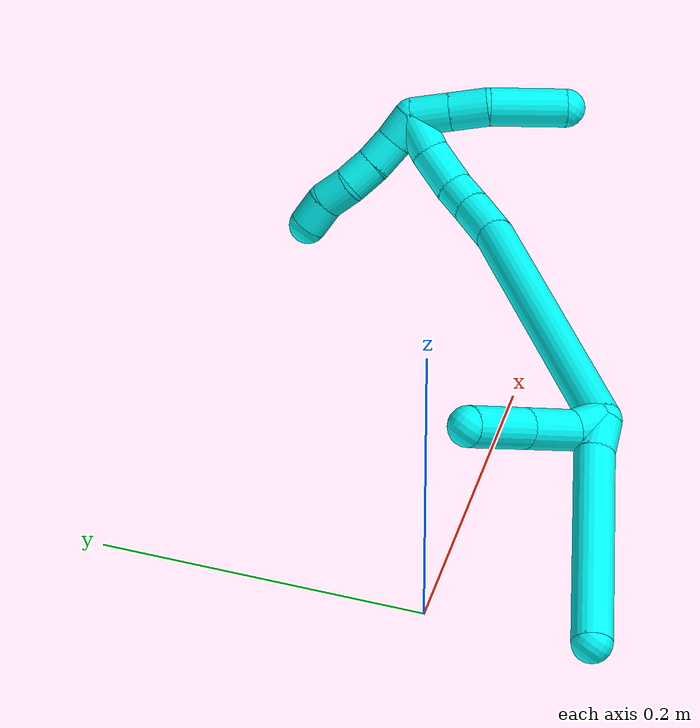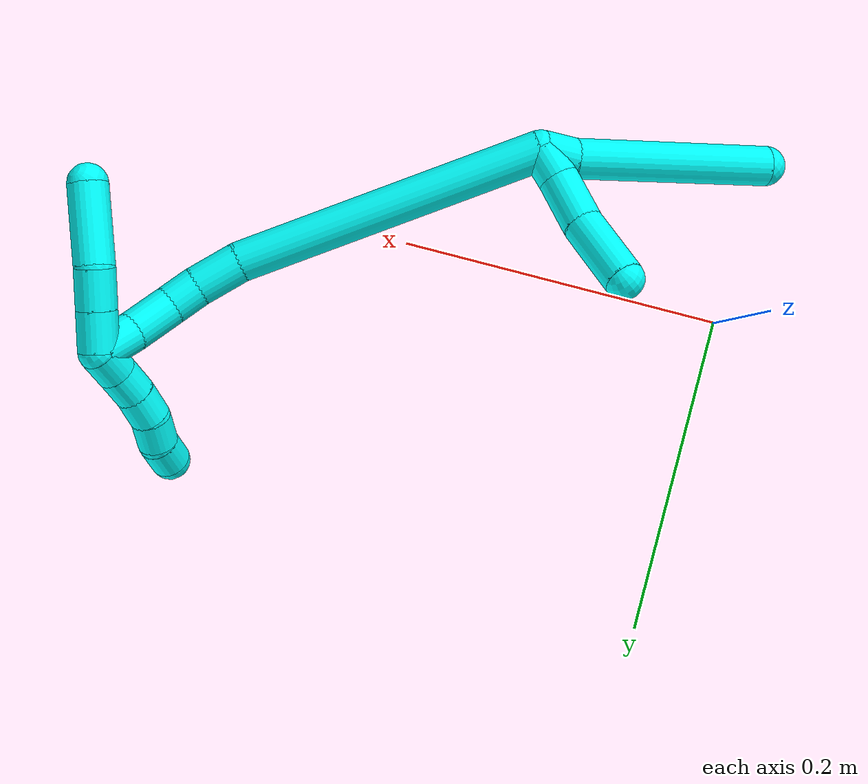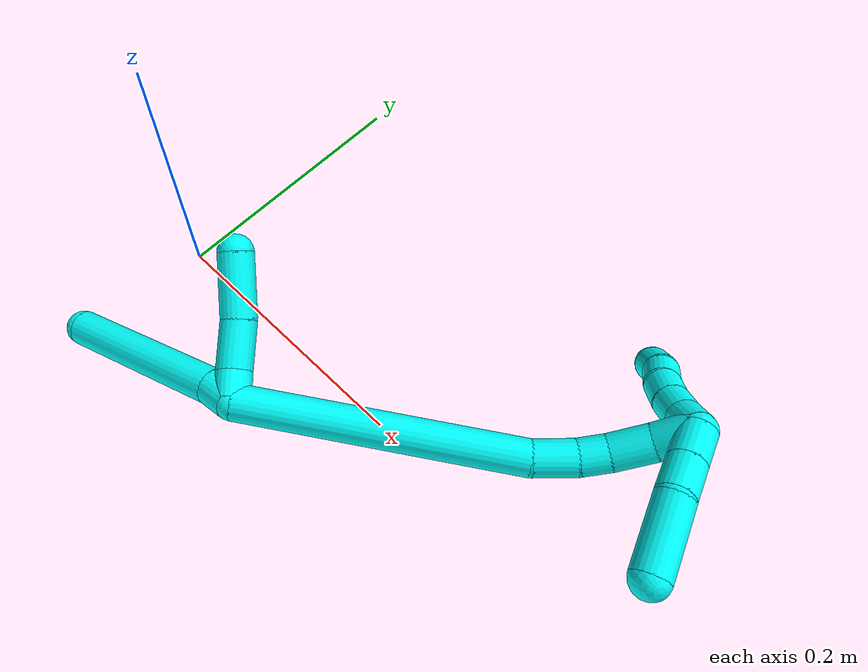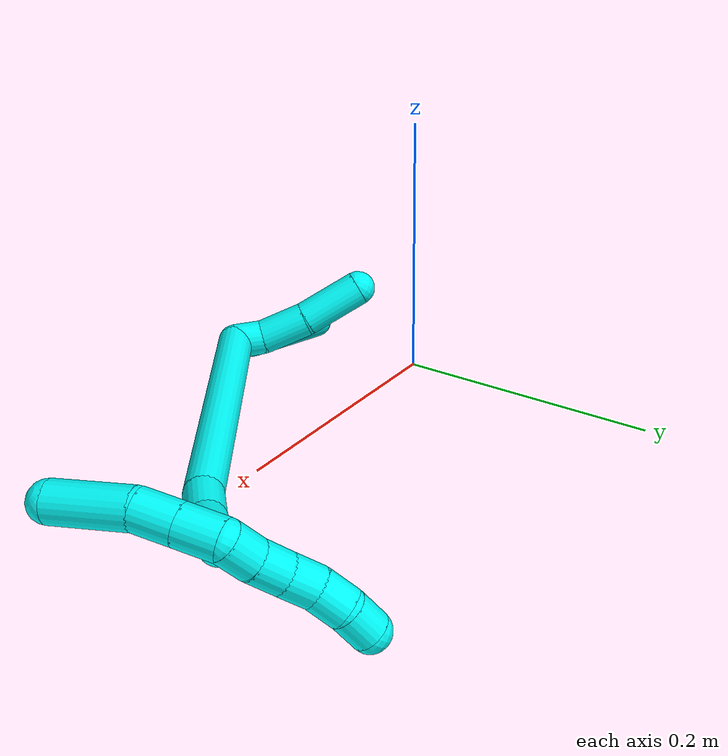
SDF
<sdf version="1.7">
 <world name="default">
  <model name="photoneo_s_sensor">
   <static>1</static>
   <pose>0 0 2 1.57079 1.57079 3.14159</pose>
   <link name="link">
    <inertial><mass>0.1</mass></inertial>
    <sensor name="sensor" type="depth">
     <update_rate>30</update_rate>
     <camera>
      <horizontal_fov>1.22</horizontal_fov>
      <image><width>1920</width><height>1200</height><format>B8G8R8</format></image>
      <clip><near>0.1</near><far>4</far></clip>
      <depth_camera><output>points</output></depth_camera>
     </camera>
     <plugin name="camera_plugin" filename="libgazebo_ros_depth_camera.so">
      <baseline>0.2</baseline>
      <alwaysOn>1</alwaysOn>
      <updateRate>0.0</updateRate>
      <cameraName>camera_ir</cameraName>
      <imageTopicName>/camera/color/image_raw</imageTopicName>
      <cameraInfoTopicName>/camera/color/camera_info</cameraInfoTopicName>
      <depthImageTopicName>/camera/depth/image_raw</depthImageTopicName>
      <depthImageCameraInfoTopicName>/camera/depth/camera_info</depthImageCameraInfoTopicName>
      <pointCloudTopicName>/camera/depth/points</pointCloudTopicName>
      <frameName>fr_optical</frameName>
      <pointCloudCutoff>0.1</pointCloudCutoff>
      <pointCloudCutoffMax>2.0</pointCloudCutoffMax>
      <distortionK1>0</distortionK1>
      <distortionK2>0</distortionK2>
      <distortionK3>0</distortionK3>
      <distortionT1>0</distortionT1>
      <distortionT2>0</distortionT2>
      <CxPrime>0</CxPrime>
      <Cx>0</Cx>
      <Cy>0</Cy>
      <focalLength>0</focalLength>
      <hackBaseline>0</hackBaseline>
     </plugin>
    </sensor>
   </link>
  </model>
  <model name="bin">
   <static>1</static>
   <link name="bottom">
    <collision name="collision-bottom">
     <pose>0 0 -0.01 0 -0 0</pose>
     <geometry><box><size>0.8 0.6 0.02</size></box></geometry>
     <surface>
      <friction><ode><mu>100</mu><mu2>100</mu2></ode></friction>
      <contact><collide_bitmask>65535</collide_bitmask></contact>
     </surface>
    </collision>
   </link>
   <link name="west_wall">
    <collision name="collision-west_wall">
     <pose>-0.41 0 0.1 0 -0 0</pose>
     <geometry><box><size>0.02 0.6 0.2</size></box></geometry>
     <surface>
      <friction><ode><mu>100</mu><mu2>100</mu2></ode></friction>
      <contact><collide_bitmask>65535</collide_bitmask></contact>
     </surface>
    </collision>
   </link>
   <link name="east_wall">
    <collision name="collision-east_wall">
     <pose>0.41 0 0.1 0 -0 0</pose>
     <geometry><box><size>0.02 0.6 0.2</size></box></geometry>
     <surface>
      <friction><ode><mu>100</mu><mu2>100</mu2></ode></friction>
      <contact><collide_bitmask>65535</collide_bitmask></contact>
     </surface>
    </collision>
   </link>
   <link name="south_wall">
    <collision name="collision-south_wall">
     <pose>0 -0.31 0.1 0 -0 0</pose>
     <geometry><box><size>0.8 0.02 0.2</size></box></geometry>
     <surface>
      <friction><ode><mu>100</mu><mu2>100</mu2></ode></friction>
      <contact><collide_bitmask>65535</collide_bitmask></contact>
     </surface>
    </collision>
   </link>
   <link name="north_wall">
    <collision name="collision-north_wall">
     <pose>0 0.31 0.1 0 -0 0</pose>
     <geometry><box><size>0.8 0.02 0.2</size></box></geometry>
     <surface>
      <friction><ode><mu>100</mu><mu2>100</mu2></ode></friction>
      <contact><collide_bitmask>65535</collide_bitmask></contact>
     </surface>
    </collision>
   </link>
  </model>
  <model name="3">
   <static>0</static>
   <link name="3">
    <collision name="collision-cylinder-e_1_2_8">
     <pose>-0.006387 -0.002164 -0.008868 2.90227 -0.610558 -2.41259</pose>
     <geometry><cylinder><radius>0.0125</radius><length>0.022281</length></cylinder></geometry>
     <surface>
      <friction><ode><mu>1.16</mu><mu2>1.16</mu2><slip1>0</slip1><slip2>0</slip2></ode></friction>
      <contact><ode><kp>1e+06</kp><kd>1</kd><max_vel>0</max_vel><min_depth>0.001</min_depth></ode></contact>
     </surface>
    </collision>
    <visual name="visual-cylinder-e_1_2_8">
     <pose>-0.006387 -0.002164 -0.008868 2.90227 -0.610558 -2.41259</pose>
     <geometry><cylinder><radius>0.0125</radius><length>0.022281</length></cylinder></geometry>
     <material><ambient>0.003922 1 0.996078 1</ambient></material>
    </visual>
    <collision name="collision-cylinder-e_2_8_6">
     <pose>-0.054827 -0.024668 -0.061277 2.70458 -0.718841 -2.07408</pose>
     <geometry><cylinder><radius>0.0125</radius><length>0.127719</length></cylinder></geometry>
     <surface>
      <friction><ode><mu>1.16</mu><mu2>1.16</mu2><slip1>0</slip1><slip2>0</slip2></ode></friction>
      <contact><ode><kp>1e+06</kp><kd>1</kd><max_vel>0</max_vel><min_depth>0.001</min_depth></ode></contact>
     </surface>
    </collision>
    <visual name="visual-cylinder-e_2_8_6">
     <pose>-0.054827 -0.024668 -0.061277 2.70458 -0.718841 -2.07408</pose>
     <geometry><cylinder><radius>0.0125</radius><length>0.127719</length></cylinder></geometry>
     <material><ambient>0.003922 1 0.996078 1</ambient></material>
    </visual>
    <collision name="collision-cylinder-e_1_2_9">
     <pose>-0.00317 0.006603 -0.007247 -2.40264 -0.312735 0.773226</pose>
     <geometry><cylinder><radius>0.0125</radius><length>0.020607</length></cylinder></geometry>
     <surface>
      <friction><ode><mu>1.16</mu><mu2>1.16</mu2><slip1>0</slip1><slip2>0</slip2></ode></friction>
      <contact><ode><kp>1e+06</kp><kd>1</kd><max_vel>0</max_vel><min_depth>0.001</min_depth></ode></contact>
     </surface>
    </collision>
    <visual name="visual-cylinder-e_1_2_9">
     <pose>-0.00317 0.006603 -0.007247 -2.40264 -0.312735 0.773226</pose>
     <geometry><cylinder><radius>0.0125</radius><length>0.020607</length></cylinder></geometry>
     <material><ambient>0.003922 1 0.996078 1</ambient></material>
    </visual>
    <collision name="collision-cylinder-e_2_9_10">
     <pose>-0.012797 0.027343 -0.021963 -2.05687 -0.383819 0.62378</pose>
     <geometry><cylinder><radius>0.0125</radius><length>0.034488</length></cylinder></geometry>
     <surface>
      <friction><ode><mu>1.16</mu><mu2>1.16</mu2><slip1>0</slip1><slip2>0</slip2></ode></friction>
      <contact><ode><kp>1e+06</kp><kd>1</kd><max_vel>0</max_vel><min_depth>0.001</min_depth></ode></contact>
     </surface>
    </collision>
    <visual name="visual-cylinder-e_2_9_10">
     <pose>-0.012797 0.027343 -0.021963 -2.05687 -0.383819 0.62378</pose>
     <geometry><cylinder><radius>0.0125</radius><length>0.034488</length></cylinder></geometry>
     <material><ambient>0.003922 1 0.996078 1</ambient></material>
    </visual>
    <collision name="collision-cylinder-e_3_10_5">
     <pose>-0.03068 0.058866 -0.037877 -2.02296 -0.533879 0.823725</pose>
     <geometry><cylinder><radius>0.0125</radius><length>0.044905</length></cylinder></geometry>
     <surface>
      <friction><ode><mu>1.16</mu><mu2>1.16</mu2><slip1>0</slip1><slip2>0</slip2></ode></friction>
      <contact><ode><kp>1e+06</kp><kd>1</kd><max_vel>0</max_vel><min_depth>0.001</min_depth></ode></contact>
     </surface>
    </collision>
    <visual name="visual-cylinder-e_3_10_5">
     <pose>-0.03068 0.058866 -0.037877 -2.02296 -0.533879 0.823725</pose>
     <geometry><cylinder><radius>0.0125</radius><length>0.044905</length></cylinder></geometry>
     <material><ambient>0.003922 1 0.996078 1</ambient></material>
    </visual>
    <collision name="collision-cylinder-e_1_2_11">
     <pose>0.085202 0.039375 0.025551 -0.99519 1.06726 -0.621066</pose>
     <geometry><cylinder><radius>0.0125</radius><length>0.194552</length></cylinder></geometry>
     <surface>
      <friction><ode><mu>1.16</mu><mu2>1.16</mu2><slip1>0</slip1><slip2>0</slip2></ode></friction>
      <contact><ode><kp>1e+06</kp><kd>1</kd><max_vel>0</max_vel><min_depth>0.001</min_depth></ode></contact>
     </surface>
    </collision>
    <visual name="visual-cylinder-e_1_2_11">
     <pose>0.085202 0.039375 0.025551 -0.99519 1.06726 -0.621066</pose>
     <geometry><cylinder><radius>0.0125</radius><length>0.194552</length></cylinder></geometry>
     <material><ambient>0.003922 1 0.996078 1</ambient></material>
    </visual>
    <collision name="collision-cylinder-e_2_11_12">
     <pose>0.182357 0.087248 0.053931 -1.24935 0.92764 -0.692262</pose>
     <geometry><cylinder><radius>0.0125</radius><length>0.029872</length></cylinder></geometry>
     <surface>
      <friction><ode><mu>1.16</mu><mu2>1.16</mu2><slip1>0</slip1><slip2>0</slip2></ode></friction>
      <contact><ode><kp>1e+06</kp><kd>1</kd><max_vel>0</max_vel><min_depth>0.001</min_depth></ode></contact>
     </surface>
    </collision>
    <visual name="visual-cylinder-e_2_11_12">
     <pose>0.182357 0.087248 0.053931 -1.24935 0.92764 -0.692262</pose>
     <geometry><cylinder><radius>0.0125</radius><length>0.029872</length></cylinder></geometry>
     <material><ambient>0.003922 1 0.996078 1</ambient></material>
    </visual>
    <collision name="collision-cylinder-e_3_12_13">
     <pose>0.201233 0.102736 0.058712 -1.29857 0.762001 -0.590368</pose>
     <geometry><cylinder><radius>0.0125</radius><length>0.020061</length></cylinder></geometry>
     <surface>
      <friction><ode><mu>1.16</mu><mu2>1.16</mu2><slip1>0</slip1><slip2>0</slip2></ode></friction>
      <contact><ode><kp>1e+06</kp><kd>1</kd><max_vel>0</max_vel><min_depth>0.001</min_depth></ode></contact>
     </surface>
    </collision>
    <visual name="visual-cylinder-e_3_12_13">
     <pose>0.201233 0.102736 0.058712 -1.29857 0.762001 -0.590368</pose>
     <geometry><cylinder><radius>0.0125</radius><length>0.020061</length></cylinder></geometry>
     <material><ambient>0.003922 1 0.996078 1</ambient></material>
    </visual>
    <collision name="collision-cylinder-e_4_13_14">
     <pose>0.215874 0.121362 0.065193 -1.19956 0.553501 -0.383684</pose>
     <geometry><cylinder><radius>0.0125</radius><length>0.029358</length></cylinder></geometry>
     <surface>
      <friction><ode><mu>1.16</mu><mu2>1.16</mu2><slip1>0</slip1><slip2>0</slip2></ode></friction>
      <contact><ode><kp>1e+06</kp><kd>1</kd><max_vel>0</max_vel><min_depth>0.001</min_depth></ode></contact>
     </surface>
    </collision>
    <visual name="visual-cylinder-e_4_13_14">
     <pose>0.215874 0.121362 0.065193 -1.19956 0.553501 -0.383684</pose>
     <geometry><cylinder><radius>0.0125</radius><length>0.029358</length></cylinder></geometry>
     <material><ambient>0.003922 1 0.996078 1</ambient></material>
    </visual>
    <collision name="collision-cylinder-e_5_14_1">
     <pose>0.227899 0.143731 0.075831 -1.05341 0.335709 -0.196435</pose>
     <geometry><cylinder><radius>0.0125</radius><length>0.026157</length></cylinder></geometry>
     <surface>
      <friction><ode><mu>1.16</mu><mu2>1.16</mu2><slip1>0</slip1><slip2>0</slip2></ode></friction>
      <contact><ode><kp>1e+06</kp><kd>1</kd><max_vel>0</max_vel><min_depth>0.001</min_depth></ode></contact>
     </surface>
    </collision>
    <visual name="visual-cylinder-e_5_14_1">
     <pose>0.227899 0.143731 0.075831 -1.05341 0.335709 -0.196435</pose>
     <geometry><cylinder><radius>0.0125</radius><length>0.026157</length></cylinder></geometry>
     <material><ambient>0.003922 1 0.996078 1</ambient></material>
    </visual>
    <collision name="collision-cylinder-e_1_1_15">
     <pose>0.22889 0.145807 0.090447 0.793958 -0.266855 -0.112425</pose>
     <geometry><cylinder><radius>0.0125</radius><length>0.025166</length></cylinder></geometry>
     <surface>
      <friction><ode><mu>1.16</mu><mu2>1.16</mu2><slip1>0</slip1><slip2>0</slip2></ode></friction>
      <contact><ode><kp>1e+06</kp><kd>1</kd><max_vel>0</max_vel><min_depth>0.001</min_depth></ode></contact>
     </surface>
    </collision>
    <visual name="visual-cylinder-e_1_1_15">
     <pose>0.22889 0.145807 0.090447 0.793958 -0.266855 -0.112425</pose>
     <geometry><cylinder><radius>0.0125</radius><length>0.025166</length></cylinder></geometry>
     <material><ambient>0.003922 1 0.996078 1</ambient></material>
    </visual>
    <collision name="collision-cylinder-e_2_15_16">
     <pose>0.222281 0.128548 0.107439 0.792452 -0.265877 -0.111773</pose>
     <geometry><cylinder><radius>0.0125</radius><length>0.025045</length></cylinder></geometry>
     <surface>
      <friction><ode><mu>1.16</mu><mu2>1.16</mu2><slip1>0</slip1><slip2>0</slip2></ode></friction>
      <contact><ode><kp>1e+06</kp><kd>1</kd><max_vel>0</max_vel><min_depth>0.001</min_depth></ode></contact>
     </surface>
    </collision>
    <visual name="visual-cylinder-e_2_15_16">
     <pose>0.222281 0.128548 0.107439 0.792452 -0.265877 -0.111773</pose>
     <geometry><cylinder><radius>0.0125</radius><length>0.025045</length></cylinder></geometry>
     <material><ambient>0.003922 1 0.996078 1</ambient></material>
    </visual>
    <collision name="collision-cylinder-e_3_16_4">
     <pose>0.217008 0.099524 0.130023 0.966449 -0.079712 -0.041842</pose>
     <geometry><cylinder><radius>0.0125</radius><length>0.049789</length></cylinder></geometry>
     <surface>
      <friction><ode><mu>1.16</mu><mu2>1.16</mu2><slip1>0</slip1><slip2>0</slip2></ode></friction>
      <contact><ode><kp>1e+06</kp><kd>1</kd><max_vel>0</max_vel><min_depth>0.001</min_depth></ode></contact>
     </surface>
    </collision>
    <visual name="visual-cylinder-e_3_16_4">
     <pose>0.217008 0.099524 0.130023 0.966449 -0.079712 -0.041842</pose>
     <geometry><cylinder><radius>0.0125</radius><length>0.049789</length></cylinder></geometry>
     <material><ambient>0.003922 1 0.996078 1</ambient></material>
    </visual>
    <collision name="collision-cylinder-e_1_1_17">
     <pose>0.233579 0.154434 0.072033 3.13867 0.137556 3.09914</pose>
     <geometry><cylinder><radius>0.0125</radius><length>0.02</length></cylinder></geometry>
     <surface>
      <friction><ode><mu>1.16</mu><mu2>1.16</mu2><slip1>0</slip1><slip2>0</slip2></ode></friction>
      <contact><ode><kp>1e+06</kp><kd>1</kd><max_vel>0</max_vel><min_depth>0.001</min_depth></ode></contact>
     </surface>
    </collision>
    <visual name="visual-cylinder-e_1_1_17">
     <pose>0.233579 0.154434 0.072033 3.13867 0.137556 3.09914</pose>
     <geometry><cylinder><radius>0.0125</radius><length>0.02</length></cylinder></geometry>
     <material><ambient>0.003922 1 0.996078 1</ambient></material>
    </visual>
    <collision name="collision-cylinder-e_2_17_18">
     <pose>0.23541 0.155437 0.052191 -3.03814 0.045989 -0.836039</pose>
     <geometry><cylinder><radius>0.0125</radius><length>0.02</length></cylinder></geometry>
     <surface>
      <friction><ode><mu>1.16</mu><mu2>1.16</mu2><slip1>0</slip1><slip2>0</slip2></ode></friction>
      <contact><ode><kp>1e+06</kp><kd>1</kd><max_vel>0</max_vel><min_depth>0.001</min_depth></ode></contact>
     </surface>
    </collision>
    <visual name="visual-cylinder-e_2_17_18">
     <pose>0.23541 0.155437 0.052191 -3.03814 0.045989 -0.836039</pose>
     <geometry><cylinder><radius>0.0125</radius><length>0.02</length></cylinder></geometry>
     <material><ambient>0.003922 1 0.996078 1</ambient></material>
    </visual>
    <collision name="collision-cylinder-e_3_18_19">
     <pose>0.236774 0.158648 0.032538 -2.92097 0.090559 -0.776624</pose>
     <geometry><cylinder><radius>0.0125</radius><length>0.02</length></cylinder></geometry>
     <surface>
      <friction><ode><mu>1.16</mu><mu2>1.16</mu2><slip1>0</slip1><slip2>0</slip2></ode></friction>
      <contact><ode><kp>1e+06</kp><kd>1</kd><max_vel>0</max_vel><min_depth>0.001</min_depth></ode></contact>
     </surface>
    </collision>
    <visual name="visual-cylinder-e_3_18_19">
     <pose>0.236774 0.158648 0.032538 -2.92097 0.090559 -0.776624</pose>
     <geometry><cylinder><radius>0.0125</radius><length>0.02</length></cylinder></geometry>
     <material><ambient>0.003922 1 0.996078 1</ambient></material>
    </visual>
    <collision name="collision-cylinder-e_4_19_20">
     <pose>0.241007 0.163491 0.013775 -2.85524 0.339394 -1.74269</pose>
     <geometry><cylinder><radius>0.0125</radius><length>0.02</length></cylinder></geometry>
     <surface>
      <friction><ode><mu>1.16</mu><mu2>1.16</mu2><slip1>0</slip1><slip2>0</slip2></ode></friction>
      <contact><ode><kp>1e+06</kp><kd>1</kd><max_vel>0</max_vel><min_depth>0.001</min_depth></ode></contact>
     </surface>
    </collision>
    <visual name="visual-cylinder-e_4_19_20">
     <pose>0.241007 0.163491 0.013775 -2.85524 0.339394 -1.74269</pose>
     <geometry><cylinder><radius>0.0125</radius><length>0.02</length></cylinder></geometry>
     <material><ambient>0.003922 1 0.996078 1</ambient></material>
    </visual>
    <collision name="collision-cylinder-e_5_20_3">
     <pose>0.247105 0.165823 -0.004875 3.10711 0.280484 2.8985</pose>
     <geometry><cylinder><radius>0.0125</radius><length>0.02</length></cylinder></geometry>
     <surface>
      <friction><ode><mu>1.16</mu><mu2>1.16</mu2><slip1>0</slip1><slip2>0</slip2></ode></friction>
      <contact><ode><kp>1e+06</kp><kd>1</kd><max_vel>0</max_vel><min_depth>0.001</min_depth></ode></contact>
     </surface>
    </collision>
    <visual name="visual-cylinder-e_5_20_3">
     <pose>0.247105 0.165823 -0.004875 3.10711 0.280484 2.8985</pose>
     <geometry><cylinder><radius>0.0125</radius><length>0.02</length></cylinder></geometry>
     <material><ambient>0.003922 1 0.996078 1</ambient></material>
    </visual>
    <collision name="collision-sphere-3">
     <pose>0.249873 0.165492 -0.014478 0 -0 0</pose>
     <geometry><sphere><radius>0.0125</radius></sphere></geometry>
     <surface>
      <friction><ode><mu>1.16</mu><mu2>1.16</mu2><slip1>0</slip1><slip2>0</slip2></ode></friction>
      <contact><ode><kp>1e+06</kp><kd>1</kd><max_vel>0</max_vel><min_depth>0.001</min_depth></ode></contact>
     </surface>
    </collision>
    <visual name="visual-sphere-3">
     <pose>0.249873 0.165492 -0.014478 0 -0 0</pose>
     <geometry><sphere><radius>0.0125</radius></sphere></geometry>
     <material><ambient>0.003922 1 0.996078 1</ambient></material>
    </visual>
    <collision name="collision-sphere-20">
     <pose>0.244337 0.166154 0.004729 0 -0 0</pose>
     <geometry><sphere><radius>0.0125</radius></sphere></geometry>
     <surface>
      <friction><ode><mu>1.16</mu><mu2>1.16</mu2><slip1>0</slip1><slip2>0</slip2></ode></friction>
      <contact><ode><kp>1e+06</kp><kd>1</kd><max_vel>0</max_vel><min_depth>0.001</min_depth></ode></contact>
     </surface>
    </collision>
    <visual name="visual-sphere-20">
     <pose>0.244337 0.166154 0.004729 0 -0 0</pose>
     <geometry><sphere><radius>0.0125</radius></sphere></geometry>
     <material><ambient>0.003922 1 0.996078 1</ambient></material>
    </visual>
    <collision name="collision-sphere-19">
     <pose>0.237678 0.160827 0.02282 0 -0 0</pose>
     <geometry><sphere><radius>0.0125</radius></sphere></geometry>
     <surface>
      <friction><ode><mu>1.16</mu><mu2>1.16</mu2><slip1>0</slip1><slip2>0</slip2></ode></friction>
      <contact><ode><kp>1e+06</kp><kd>1</kd><max_vel>0</max_vel><min_depth>0.001</min_depth></ode></contact>
     </surface>
    </collision>
    <visual name="visual-sphere-19">
     <pose>0.237678 0.160827 0.02282 0 -0 0</pose>
     <geometry><sphere><radius>0.0125</radius></sphere></geometry>
     <material><ambient>0.003922 1 0.996078 1</ambient></material>
    </visual>
    <collision name="collision-sphere-5">
     <pose>-0.042106 0.076252 -0.046322 0 -0 0</pose>
     <geometry><sphere><radius>0.0125</radius></sphere></geometry>
     <surface>
      <friction><ode><mu>1.16</mu><mu2>1.16</mu2><slip1>0</slip1><slip2>0</slip2></ode></friction>
      <contact><ode><kp>1e+06</kp><kd>1</kd><max_vel>0</max_vel><min_depth>0.001</min_depth></ode></contact>
     </surface>
    </collision>
    <visual name="visual-sphere-5">
     <pose>-0.042106 0.076252 -0.046322 0 -0 0</pose>
     <geometry><sphere><radius>0.0125</radius></sphere></geometry>
     <material><ambient>0.003922 1 0.996078 1</ambient></material>
    </visual>
    <collision name="collision-sphere-10">
     <pose>-0.019254 0.041481 -0.029432 0 -0 0</pose>
     <geometry><sphere><radius>0.0125</radius></sphere></geometry>
     <surface>
      <friction><ode><mu>1.16</mu><mu2>1.16</mu2><slip1>0</slip1><slip2>0</slip2></ode></friction>
      <contact><ode><kp>1e+06</kp><kd>1</kd><max_vel>0</max_vel><min_depth>0.001</min_depth></ode></contact>
     </surface>
    </collision>
    <visual name="visual-sphere-10">
     <pose>-0.019254 0.041481 -0.029432 0 -0 0</pose>
     <geometry><sphere><radius>0.0125</radius></sphere></geometry>
     <material><ambient>0.003922 1 0.996078 1</ambient></material>
    </visual>
    <collision name="collision-sphere-6">
     <pose>-0.096879 -0.045008 -0.104819 0 -0 0</pose>
     <geometry><sphere><radius>0.0125</radius></sphere></geometry>
     <surface>
      <friction><ode><mu>1.16</mu><mu2>1.16</mu2><slip1>0</slip1><slip2>0</slip2></ode></friction>
      <contact><ode><kp>1e+06</kp><kd>1</kd><max_vel>0</max_vel><min_depth>0.001</min_depth></ode></contact>
     </surface>
    </collision>
    <visual name="visual-sphere-6">
     <pose>-0.096879 -0.045008 -0.104819 0 -0 0</pose>
     <geometry><sphere><radius>0.0125</radius></sphere></geometry>
     <material><ambient>0.003922 1 0.996078 1</ambient></material>
    </visual>
    <collision name="collision-sphere-9">
     <pose>-0.00634 0.013206 -0.014493 0 -0 0</pose>
     <geometry><sphere><radius>0.0125</radius></sphere></geometry>
     <surface>
      <friction><ode><mu>1.16</mu><mu2>1.16</mu2><slip1>0</slip1><slip2>0</slip2></ode></friction>
      <contact><ode><kp>1e+06</kp><kd>1</kd><max_vel>0</max_vel><min_depth>0.001</min_depth></ode></contact>
     </surface>
    </collision>
    <visual name="visual-sphere-9">
     <pose>-0.00634 0.013206 -0.014493 0 -0 0</pose>
     <geometry><sphere><radius>0.0125</radius></sphere></geometry>
     <material><ambient>0.003922 1 0.996078 1</ambient></material>
    </visual>
    <collision name="collision-sphere-2">
     <geometry><sphere><radius>0.0125</radius></sphere></geometry>
     <surface>
      <friction><ode><mu>1.16</mu><mu2>1.16</mu2><slip1>0</slip1><slip2>0</slip2></ode></friction>
      <contact><ode><kp>1e+06</kp><kd>1</kd><max_vel>0</max_vel><min_depth>0.001</min_depth></ode></contact>
     </surface>
    </collision>
    <visual name="visual-sphere-2">
     <geometry><sphere><radius>0.0125</radius></sphere></geometry>
     <material><ambient>0.003922 1 0.996078 1</ambient></material>
    </visual>
    <collision name="collision-sphere-8">
     <pose>-0.012774 -0.004327 -0.017735 0 -0 0</pose>
     <geometry><sphere><radius>0.0125</radius></sphere></geometry>
     <surface>
      <friction><ode><mu>1.16</mu><mu2>1.16</mu2><slip1>0</slip1><slip2>0</slip2></ode></friction>
      <contact><ode><kp>1e+06</kp><kd>1</kd><max_vel>0</max_vel><min_depth>0.001</min_depth></ode></contact>
     </surface>
    </collision>
    <visual name="visual-sphere-8">
     <pose>-0.012774 -0.004327 -0.017735 0 -0 0</pose>
     <geometry><sphere><radius>0.0125</radius></sphere></geometry>
     <material><ambient>0.003922 1 0.996078 1</ambient></material>
    </visual>
    <collision name="collision-sphere-11">
     <pose>0.170405 0.078749 0.051101 0 -0 0</pose>
     <geometry><sphere><radius>0.0125</radius></sphere></geometry>
     <surface>
      <friction><ode><mu>1.16</mu><mu2>1.16</mu2><slip1>0</slip1><slip2>0</slip2></ode></friction>
      <contact><ode><kp>1e+06</kp><kd>1</kd><max_vel>0</max_vel><min_depth>0.001</min_depth></ode></contact>
     </surface>
    </collision>
    <visual name="visual-sphere-11">
     <pose>0.170405 0.078749 0.051101 0 -0 0</pose>
     <geometry><sphere><radius>0.0125</radius></sphere></geometry>
     <material><ambient>0.003922 1 0.996078 1</ambient></material>
    </visual>
    <collision name="collision-sphere-12">
     <pose>0.194309 0.095747 0.056761 0 -0 0</pose>
     <geometry><sphere><radius>0.0125</radius></sphere></geometry>
     <surface>
      <friction><ode><mu>1.16</mu><mu2>1.16</mu2><slip1>0</slip1><slip2>0</slip2></ode></friction>
      <contact><ode><kp>1e+06</kp><kd>1</kd><max_vel>0</max_vel><min_depth>0.001</min_depth></ode></contact>
     </surface>
    </collision>
    <visual name="visual-sphere-12">
     <pose>0.194309 0.095747 0.056761 0 -0 0</pose>
     <geometry><sphere><radius>0.0125</radius></sphere></geometry>
     <material><ambient>0.003922 1 0.996078 1</ambient></material>
    </visual>
    <collision name="collision-sphere-13">
     <pose>0.208158 0.109726 0.060663 0 -0 0</pose>
     <geometry><sphere><radius>0.0125</radius></sphere></geometry>
     <surface>
      <friction><ode><mu>1.16</mu><mu2>1.16</mu2><slip1>0</slip1><slip2>0</slip2></ode></friction>
      <contact><ode><kp>1e+06</kp><kd>1</kd><max_vel>0</max_vel><min_depth>0.001</min_depth></ode></contact>
     </surface>
    </collision>
    <visual name="visual-sphere-13">
     <pose>0.208158 0.109726 0.060663 0 -0 0</pose>
     <geometry><sphere><radius>0.0125</radius></sphere></geometry>
     <material><ambient>0.003922 1 0.996078 1</ambient></material>
    </visual>
    <collision name="collision-sphere-14">
     <pose>0.223591 0.132999 0.069723 0 -0 0</pose>
     <geometry><sphere><radius>0.0125</radius></sphere></geometry>
     <surface>
      <friction><ode><mu>1.16</mu><mu2>1.16</mu2><slip1>0</slip1><slip2>0</slip2></ode></friction>
      <contact><ode><kp>1e+06</kp><kd>1</kd><max_vel>0</max_vel><min_depth>0.001</min_depth></ode></contact>
     </surface>
    </collision>
    <visual name="visual-sphere-14">
     <pose>0.223591 0.132999 0.069723 0 -0 0</pose>
     <geometry><sphere><radius>0.0125</radius></sphere></geometry>
     <material><ambient>0.003922 1 0.996078 1</ambient></material>
    </visual>
    <collision name="collision-sphere-1">
     <pose>0.232208 0.154463 0.081938 0 -0 0</pose>
     <geometry><sphere><radius>0.0125</radius></sphere></geometry>
     <surface>
      <friction><ode><mu>1.16</mu><mu2>1.16</mu2><slip1>0</slip1><slip2>0</slip2></ode></friction>
      <contact><ode><kp>1e+06</kp><kd>1</kd><max_vel>0</max_vel><min_depth>0.001</min_depth></ode></contact>
     </surface>
    </collision>
    <visual name="visual-sphere-1">
     <pose>0.232208 0.154463 0.081938 0 -0 0</pose>
     <geometry><sphere><radius>0.0125</radius></sphere></geometry>
     <material><ambient>0.003922 1 0.996078 1</ambient></material>
    </visual>
    <collision name="collision-sphere-18">
     <pose>0.23587 0.156468 0.042255 0 -0 0</pose>
     <geometry><sphere><radius>0.0125</radius></sphere></geometry>
     <surface>
      <friction><ode><mu>1.16</mu><mu2>1.16</mu2><slip1>0</slip1><slip2>0</slip2></ode></friction>
      <contact><ode><kp>1e+06</kp><kd>1</kd><max_vel>0</max_vel><min_depth>0.001</min_depth></ode></contact>
     </surface>
    </collision>
    <visual name="visual-sphere-18">
     <pose>0.23587 0.156468 0.042255 0 -0 0</pose>
     <geometry><sphere><radius>0.0125</radius></sphere></geometry>
     <material><ambient>0.003922 1 0.996078 1</ambient></material>
    </visual>
    <collision name="collision-sphere-15">
     <pose>0.225571 0.137152 0.098956 0 -0 0</pose>
     <geometry><sphere><radius>0.0125</radius></sphere></geometry>
     <surface>
      <friction><ode><mu>1.16</mu><mu2>1.16</mu2><slip1>0</slip1><slip2>0</slip2></ode></friction>
      <contact><ode><kp>1e+06</kp><kd>1</kd><max_vel>0</max_vel><min_depth>0.001</min_depth></ode></contact>
     </surface>
    </collision>
    <visual name="visual-sphere-15">
     <pose>0.225571 0.137152 0.098956 0 -0 0</pose>
     <geometry><sphere><radius>0.0125</radius></sphere></geometry>
     <material><ambient>0.003922 1 0.996078 1</ambient></material>
    </visual>
    <collision name="collision-sphere-16">
     <pose>0.218991 0.119944 0.115922 0 -0 0</pose>
     <geometry><sphere><radius>0.0125</radius></sphere></geometry>
     <surface>
      <friction><ode><mu>1.16</mu><mu2>1.16</mu2><slip1>0</slip1><slip2>0</slip2></ode></friction>
      <contact><ode><kp>1e+06</kp><kd>1</kd><max_vel>0</max_vel><min_depth>0.001</min_depth></ode></contact>
     </surface>
    </collision>
    <visual name="visual-sphere-16">
     <pose>0.218991 0.119944 0.115922 0 -0 0</pose>
     <geometry><sphere><radius>0.0125</radius></sphere></geometry>
     <material><ambient>0.003922 1 0.996078 1</ambient></material>
    </visual>
    <collision name="collision-sphere-4">
     <pose>0.215026 0.079104 0.144124 0 -0 0</pose>
     <geometry><sphere><radius>0.0125</radius></sphere></geometry>
     <surface>
      <friction><ode><mu>1.16</mu><mu2>1.16</mu2><slip1>0</slip1><slip2>0</slip2></ode></friction>
      <contact><ode><kp>1e+06</kp><kd>1</kd><max_vel>0</max_vel><min_depth>0.001</min_depth></ode></contact>
     </surface>
    </collision>
    <visual name="visual-sphere-4">
     <pose>0.215026 0.079104 0.144124 0 -0 0</pose>
     <geometry><sphere><radius>0.0125</radius></sphere></geometry>
     <material><ambient>0.003922 1 0.996078 1</ambient></material>
    </visual>
    <collision name="collision-sphere-17">
     <pose>0.23495 0.154405 0.062127 0 -0 0</pose>
     <geometry><sphere><radius>0.0125</radius></sphere></geometry>
     <surface>
      <friction><ode><mu>1.16</mu><mu2>1.16</mu2><slip1>0</slip1><slip2>0</slip2></ode></friction>
      <contact><ode><kp>1e+06</kp><kd>1</kd><max_vel>0</max_vel><min_depth>0.001</min_depth></ode></contact>
     </surface>
    </collision>
    <visual name="visual-sphere-17">
     <pose>0.23495 0.154405 0.062127 0 -0 0</pose>
     <geometry><sphere><radius>0.0125</radius></sphere></geometry>
     <material><ambient>0.003922 1 0.996078 1</ambient></material>
    </visual>
    <inertial>
     <pose>0.100453 0.063966 0.02104 0 -0 0</pose>
     <mass>0.75</mass>
     <inertia>
      <ixx>-7.3e-05</ixx>
      <ixy>0</ixy>
      <ixz>0</ixz>
      <iyy>0.000399</iyy>
      <iyz>0</iyz>
      <izz>-0.000633</izz>
     </inertia>
    </inertial>
   </link>
   <pose>0.134589 -0.071034 0.054922 0.722337 0.538052 0.473118</pose>
  </model>
 </world>
</sdf>
